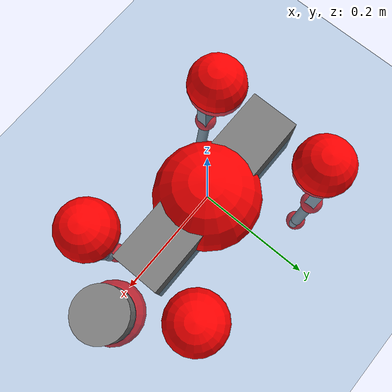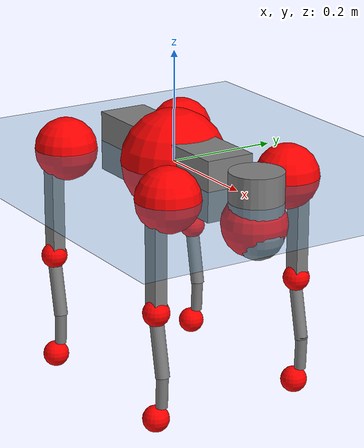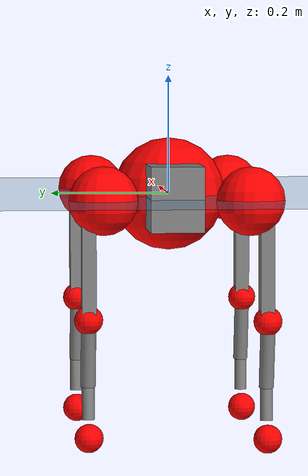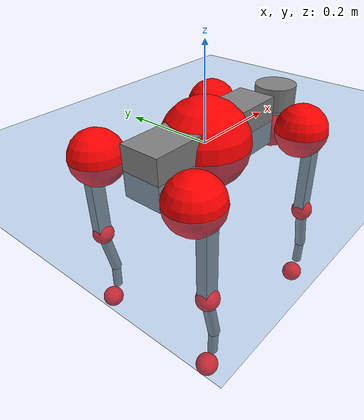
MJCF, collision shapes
<mujoco model="go2">
  <compiler angle="radian" assetdir="assets" balanceinertia="true" inertiafromgeom="false"/>

  <option timestep="0.005" density="1.2" viscosity="2e-05"/>

  <size nkey="1"/>

  <visual>
    <quality shadowsize="8192"/>
    <map shadowclip="0.5"/>
  </visual>

  <default>
    <default class="/">
      <geom contype="0" conaffinity="0" group="1" solref="-1000 -80"/>
      <site size="0.01 0.005 0.005" group="5"/>
      <general forcelimited="true" biastype="affine" gainprm="20" biasprm="0 -20 -0.5"/>
      <default class="go2">
        <joint armature="0.01" damping="0.01" frictionloss="0.2"/>
        <geom condim="1" margin="0.001"/>
        <default class="visual">
          <geom type="mesh" group="2"/>
        </default>
        <default class="collision">
          <geom group="3"/>
          <default class="foot">
            <geom size="0.022 0 0" condim="6" priority="1" friction="0.8 0.02 0.01" solimp="0.015 1 0.022"/>
          </default>
        </default>
        <default class="reward_collision_sphere">
          <geom group="5" rgba="1 0 0 1"/>
        </default>
      </default>
    </default>
  </default>

  <asset>
    <texture type="skybox" colorspace="auto" name="//unnamed_texture_0" builtin="gradient" rgb1="0.95 0.95 0.95" rgb2="0.95 0.95 0.95" width="100" height="600"/>
    <texture type="2d" colorspace="auto" name="texplane" builtin="checker" rgb1="0.345 0.575 0.748" rgb2="0.345 0.575 0.748" markrgb="1 1 1" width="512" height="512"/>
    <material name="MatPlane" class="/" texture="texplane" texuniform="true" texrepeat="2 2" specular="0.9"/>
    <material name="metal" class="/" rgba="0.9 0.95 0.95 1"/>
    <material name="black" class="/" rgba="0 0 0 1"/>
    <material name="white" class="/"/>
    <material name="gray" class="/" rgba="0.671705 0.692426 0.77427 1"/>
    <mesh name="base_0" class="/" file="base_0.obj"/>
    <mesh name="base_1" class="/" file="base_1.obj"/>
    <mesh name="base_2" class="/" file="base_2.obj"/>
    <mesh name="base_3" class="/" file="base_3.obj"/>
    <mesh name="base_4" class="/" file="base_4.obj"/>
    <mesh name="hip_0" class="/" file="hip_0.obj"/>
    <mesh name="hip_1" class="/" file="hip_1.obj"/>
    <mesh name="thigh_0" class="/" file="thigh_0.obj"/>
    <mesh name="thigh_1" class="/" file="thigh_1.obj"/>
    <mesh name="thigh_mirror_0" class="/" file="thigh_mirror_0.obj"/>
    <mesh name="thigh_mirror_1" class="/" file="thigh_mirror_1.obj"/>
    <mesh name="calf_0" class="/" file="calf_0.obj"/>
    <mesh name="calf_1" class="/" file="calf_1.obj"/>
    <mesh name="calf_mirror_0" class="/" file="calf_mirror_0.obj"/>
    <mesh name="calf_mirror_1" class="/" file="calf_mirror_1.obj"/>
    <mesh name="foot" class="/" file="foot.obj"/>
  </asset>

  <worldbody>
    <geom name="floor" class="/" size="100 100 0.125" type="plane" group="0" material="MatPlane"/>
    <light name="toplight_shadow" class="/" pos="0 0 5" dir="0.0990148 0.0990148 -0.990148" type="directional" ambient="0.04 0.04 0.04" diffuse="0.55 0.55 0.55" specular="0.12 0.12 0.12"/>
    <light name="toplight_fill" class="/" pos="0 0 5" dir="0.0990148 0.0990148 -0.990148" type="directional" castshadow="false" ambient="0.04 0.04 0.04" diffuse="0.3 0.3 0.3" specular="0.08 0.08 0.08"/>
    <body name="trunk" childclass="go2" pos="0.000117082 -1.47333e-05 -0.000851711" quat="1 4.04932e-05 -4.57437e-06 2.55189e-05">
      <inertial pos="0.0194806 0.00212854 -0.00359411" quat="-0.000438659 0.713141 -0.00167976 0.701019" mass="6.00624" diaginertia="0.0667399 0.118959 0.0161439"/>
      <joint name="//unnamed_joint_0" type="free" armature="0" damping="0" frictionloss="0"/>
      <geom name="//unnamed_geom_1" class="visual" material="black" mesh="base_0"/>
      <geom name="//unnamed_geom_2" class="visual" material="black" mesh="base_1"/>
      <geom name="//unnamed_geom_3" class="visual" material="black" mesh="base_2"/>
      <geom name="//unnamed_geom_4" class="visual" material="white" mesh="base_3"/>
      <geom name="//unnamed_geom_5" class="visual" material="gray" mesh="base_4"/>
      <geom name="trunk_1" class="collision" size="0.179383 0.0445835 0.0543585" type="box"/>
      <geom name="trunk_2" class="collision" size="0.0476829 0.0429146" pos="0.257779 0 0.00919797" type="cylinder"/>
      <geom name="trunk_3" class="collision" size="0.0448219" pos="0.265015 0 -0.0551878"/>
      <geom name="//unnamed_geom_9" class="reward_collision_sphere" size="0.0953657"/>
      <geom name="//unnamed_geom_10" class="reward_collision_sphere" size="0.0572194" pos="0.253257 0 -0.0413909"/>
      <site name="imu" pos="-0.0283326 0.00109413 0.0339141" size="0.00953657"/>
      <camera name="track" pos="0 -2.07337 0" quat="0.707107 0.707107 0 0" mode="trackcom"/>
      <camera name="ego_camera" pos="0.2822 0 0.0413909" quat="-0.5 -0.5 0.5 0.5"/>
      <body name="FL_hip" pos="0.1738 0.0484504 0.000107095" quat="1 7.78173e-05 -0.000230755 -8.77543e-05">
        <inertial pos="-0.00658344 0.00189925 0.000148776" quat="0.497239 0.499431 0.5053 0.49799" mass="0.602014" diaginertia="0.00054192 0.000725508 0.000319583"/>
        <joint name="FL_hip_joint" pos="0 0 0" axis="0.999994 -0.00346115 0.000238873" stiffness="0.00277732" range="-1.03133 1.04588" armature="0.00960803" damping="0.00425868" frictionloss="0.175021"/>
        <geom name="//unnamed_geom_11" class="visual" material="metal" mesh="hip_0"/>
        <geom name="//unnamed_geom_12" class="visual" material="gray" mesh="hip_1"/>
        <geom name="//unnamed_geom_13" class="collision" size="0.0438682 0.0190731" pos="0 0.082935 0" quat="0.707107 0.707107 0 0" type="cylinder"/>
        <geom name="//unnamed_geom_14" class="reward_collision_sphere" size="0.0572194" pos="0 0.0725681 0"/>
        <body name="FL_thigh" pos="-0.00144601 0.0983614 0.00197026" quat="1 1.71491e-05 -0.000134291 3.79896e-05">
          <inertial pos="-0.00372339 -0.0229642 -0.02964" quat="0.829892 0.0834786 -0.0205958 0.551259" mass="0.964017" diaginertia="0.00361065 0.00693282 0.000546711"/>
          <joint name="FL_thigh_joint" pos="0 0 0" axis="0.00375296 0.999991 0.00197025" stiffness="0.00624041" range="-1.57575 3.47723" armature="0.00926488" damping="0.00590288" frictionloss="0.195489"/>
          <geom name="//unnamed_geom_15" class="visual" material="metal" mesh="thigh_0"/>
          <geom name="//unnamed_geom_16" class="visual" material="gray" mesh="thigh_1"/>
          <geom name="//unnamed_geom_17" class="collision" size="0.101565 0.0116823 0.0162122" pos="0 0 -0.0979584" quat="0.707107 0 0.707107 0" type="box"/>
          <body name="FL_calf" pos="-0.000965378 -9.34787e-05 -0.194726" quat="0.999999 0.000919645 -0.000563964 0.000422698">
            <inertial pos="0.00512251 -0.000522128 -0.129534" quat="0.710823 0.00171314 -0.0040588 0.703358" mass="0.20913" diaginertia="0.000903363 0.00171442 3.47443e-05"/>
            <joint name="FL_calf_joint" pos="0 0 0" axis="-0.00176482 0.999971 -0.00742078" stiffness="0.00105361" range="-2.71625 -0.83412" armature="0.00988275" damping="0.00797245" frictionloss="0.182582"/>
            <geom name="//unnamed_geom_18" class="visual" material="gray" mesh="calf_0"/>
            <geom name="//unnamed_geom_19" class="visual" material="black" mesh="calf_1"/>
            <geom name="FL_calf0" class="collision" size="0.0114439 0.0572194" pos="0.0072359 0 -0.0551878" quat="0.994493 0 -0.104807 0" type="cylinder"/>
            <geom name="//unnamed_geom_21" class="collision" size="0.0104902 0.0309939" pos="0.0180898 0 -0.13613" quat="0.999688 0 0.0249974 0" type="cylinder"/>
            <geom name="//unnamed_geom_22" class="visual" pos="0 0 -0.195917" quat="1 0 0 0" material="black" mesh="foot"/>
            <geom name="FL_foot" class="foot" size="0.0186732" pos="-0.00180898 0 -0.195917"/>
            <geom name="//unnamed_geom_24" class="reward_collision_sphere" size="0.0238414"/>
            <geom name="//unnamed_geom_25" class="reward_collision_sphere" size="0.0238414" pos="-0.00180898 0 -0.195917"/>
            <site name="FL_foot" class="foot" pos="-0.00180898 0 -0.195917" size="0.00953657"/>
          </body>
        </body>
      </body>
      <body name="FR_hip" pos="0.174513 -0.0475634 -0.000450192" quat="1 2.10976e-05 -0.000443771 0.000514353">
        <inertial pos="-0.00479792 -0.00147642 4.98419e-05" quat="0.497527 0.505311 0.499788 0.497333" mass="0.565721" diaginertia="0.000517962 0.000700017 0.000315934"/>
        <joint name="FR_hip_joint" pos="0 0 0" axis="0.999991 0.00320307 -0.00284424" stiffness="1.14322e-05" range="-1.02307 1.00494" armature="0.00964461" damping="0.0103226" frictionloss="0.187515"/>
        <geom name="//unnamed_geom_26" class="visual" pos="0 1.0183e-09 4.36769e-08" quat="4.63268e-05 1 0 0" material="metal" mesh="hip_0"/>
        <geom name="//unnamed_geom_27" class="visual" pos="0 1.65078e-09 -1.0803e-07" quat="4.63268e-05 1 0 0" material="gray" mesh="hip_1"/>
        <geom name="//unnamed_geom_28" class="collision" size="0.0438682 0.0190731" pos="0 -0.082935 0" quat="0.707107 0.707107 0 0" type="cylinder"/>
        <geom name="//unnamed_geom_29" class="reward_collision_sphere" size="0.0572194" pos="0 -0.0725681 0"/>
        <body name="FR_thigh" pos="0.00287924 -0.098096 0.000779607" quat="1 -5.07193e-05 0.000494238 0.000185549">
          <inertial pos="-0.00270619 0.0231337 -0.0300124" quat="0.551603 -0.0197426 0.0845848 0.829572" mass="1.03721" diaginertia="0.00361291 0.00728847 0.000593672"/>
          <joint name="FR_thigh_joint" pos="0 0 0" axis="0.00918389 -0.999955 0.00222202" range="-3.44032 1.52464" armature="0.00944625" damping="0.00160293" frictionloss="0.197533"/>
          <geom name="//unnamed_geom_30" class="visual" material="metal" mesh="thigh_mirror_0"/>
          <geom name="//unnamed_geom_31" class="visual" material="gray" mesh="thigh_mirror_1"/>
          <geom name="//unnamed_geom_32" class="collision" size="0.101565 0.0116823 0.0162122" pos="0 0 -0.0979584" quat="0.707107 0 0.707107 0" type="box"/>
          <body name="FR_calf" pos="0.00207206 -0.00109809 -0.195749" quat="1 -0.000168955 0.000157611 8.86208e-05">
            <inertial pos="0.00656942 0.00147534 -0.127964" quat="0.704028 -0.00377822 -0.00330982 0.710154" mass="0.202653" diaginertia="0.000902494 0.0017532 3.50153e-05"/>
            <joint name="FR_calf_joint" pos="0 0 0" axis="-0.0100059 -0.999945 -0.00312409" stiffness="0.00235075" range="0.81857 2.68843" armature="0.00958621" damping="0.0173248" frictionloss="0.166669"/>
            <geom name="//unnamed_geom_33" class="visual" material="gray" mesh="calf_mirror_0"/>
            <geom name="//unnamed_geom_34" class="visual" material="black" mesh="calf_mirror_1"/>
            <geom name="FR_calf0" class="collision" size="0.0123975 0.0572194" pos="0.00904488 0 -0.0551878" quat="0.995004 0 -0.0998334 0" type="cylinder"/>
            <geom name="//unnamed_geom_36" class="collision" size="0.0104902 0.0309939" pos="0.0180898 0 -0.13613" quat="0.999688 0 0.0249974 0" type="cylinder"/>
            <geom name="//unnamed_geom_37" class="visual" pos="0 0 -0.195917" quat="1 0 0 0" material="black" mesh="foot"/>
            <geom name="FR_foot" class="foot" size="0.0224263" pos="-0.00180898 0 -0.195917"/>
            <geom name="//unnamed_geom_39" class="reward_collision_sphere" size="0.0238414"/>
            <geom name="//unnamed_geom_40" class="reward_collision_sphere" size="0.0238414" pos="-0.00180898 0 -0.195917"/>
            <site name="FR_foot" class="foot" pos="-0.00180898 0 -0.195917" size="0.00953657"/>
          </body>
        </body>
      </body>
      <body name="RL_hip" pos="-0.174077 0.0499653 -0.00102878" quat="1 -0.000158912 -0.000122464 -0.000231134">
        <inertial pos="0.00533927 0.000689673 -0.000455613" quat="0.514598 0.489303 0.495939 0.499815" mass="0.569752" diaginertia="0.000528619 0.000718369 0.000319317"/>
        <joint name="RL_hip_joint" pos="0 0 0" axis="-0.999829 -0.0127695 -0.0133743" range="-1.06074 1.05547" armature="0.00958274" damping="0.00915102" frictionloss="0.186778"/>
        <geom name="//unnamed_geom_41" class="visual" pos="1.33369e-10 0 2.61434e-08" quat="4.63268e-05 0 1 0" material="metal" mesh="hip_0"/>
        <geom name="//unnamed_geom_42" class="visual" pos="2.16207e-10 0 2.31855e-08" quat="4.63268e-05 0 1 0" material="gray" mesh="hip_1"/>
        <geom name="//unnamed_geom_43" class="collision" size="0.0438682 0.0190731" pos="0 0.082935 0" quat="0.707107 0.707107 0 0" type="cylinder"/>
        <geom name="//unnamed_geom_44" class="reward_collision_sphere" size="0.0572194" pos="0 0.0725681 0"/>
        <body name="RL_thigh" pos="-0.000241052 0.0972353 -0.000843857" quat="1 -6.3906e-05 -4.41305e-05 8.93675e-05">
          <inertial pos="-0.0023126 -0.0236471 -0.0302047" quat="0.828749 0.0805693 -0.0187007 0.553474" mass="1.00766" diaginertia="0.00371407 0.0072059 0.000590552"/>
          <joint name="RL_thigh_joint" pos="0 0 0" axis="-0.00755378 0.99994 0.00787437" stiffness="0.000294134" range="-0.518731 4.54394" armature="0.00949448" damping="0.00853241" frictionloss="0.189761"/>
          <geom name="//unnamed_geom_45" class="visual" material="metal" mesh="thigh_0"/>
          <geom name="//unnamed_geom_46" class="visual" material="gray" mesh="thigh_1"/>
          <geom name="//unnamed_geom_47" class="collision" size="0.101565 0.0116823 0.0162122" pos="0 0 -0.0979584" quat="0.707107 0 0.707107 0" type="box"/>
          <body name="RL_calf" pos="0.001771 0.000245897 -0.195778" quat="1 -0.000651424 0.000358432 -0.000457693">
            <inertial pos="0.00696176 0.000490058 -0.130744" quat="0.710714 0.0017804 -0.00458201 0.703464" mass="0.210722" diaginertia="0.000943022 0.00185685 3.72654e-05"/>
            <joint name="RL_calf_joint" pos="0 0 0" axis="0.0151878 0.999883 0.00194057" range="-2.72006 -0.887832" armature="0.00939852" damping="0.00202316" frictionloss="0.185511"/>
            <geom name="//unnamed_geom_48" class="visual" material="gray" mesh="calf_0"/>
            <geom name="//unnamed_geom_49" class="visual" material="black" mesh="calf_1"/>
            <geom name="RL_calf0" class="collision" size="0.0123975 0.0572194" pos="0.00904488 0 -0.0551878" quat="0.995004 0 -0.0998334 0" type="cylinder"/>
            <geom name="//unnamed_geom_51" class="collision" size="0.0104902 0.0309939" pos="0.0180898 0 -0.13613" quat="0.999688 0 0.0249974 0" type="cylinder"/>
            <geom name="//unnamed_geom_52" class="visual" pos="0 0 -0.195917" quat="1 0 0 0" material="black" mesh="foot"/>
            <geom name="RL_foot" class="foot" size="0.0165477" pos="-0.00180898 0 -0.195917"/>
            <geom name="//unnamed_geom_54" class="reward_collision_sphere" size="0.0238414"/>
            <geom name="//unnamed_geom_55" class="reward_collision_sphere" size="0.0238414" pos="-0.00180898 0 -0.195917"/>
            <site name="RL_foot" class="foot" pos="-0.00180898 0 -0.195917" size="0.00953657"/>
          </body>
        </body>
      </body>
      <body name="RR_hip" pos="-0.174669 -0.0484295 -0.00255552" quat="1 -0.000301844 -0.000746473 0.000556928">
        <inertial pos="0.00418386 -0.00253154 0.000803378" quat="0.491501 0.500914 0.493792 0.513499" mass="0.591405" diaginertia="0.000533692 0.000714212 0.000314569"/>
        <joint name="RR_hip_joint" pos="0 0 0" axis="-0.999985 0.00121812 -0.00540246" stiffness="0.00118043" range="-1.0823 1.03438" armature="0.00854442" damping="0.0116656" frictionloss="0.193057"/>
        <geom name="//unnamed_geom_56" class="visual" pos="-1.28792e-10 1.0183e-09 -1.75336e-08" quat="2.14617e-09 4.63268e-05 4.63268e-05 -1" material="metal" mesh="hip_0"/>
        <geom name="//unnamed_geom_57" class="visual" pos="-2.27527e-10 1.65078e-09 1.31215e-07" quat="2.14617e-09 4.63268e-05 4.63268e-05 -1" material="gray" mesh="hip_1"/>
        <geom name="//unnamed_geom_58" class="collision" size="0.0438682 0.0190731" pos="0 -0.082935 0" quat="0.707107 0.707107 0 0" type="cylinder"/>
        <geom name="//unnamed_geom_59" class="reward_collision_sphere" size="0.0572194" pos="0 -0.0725681 0"/>
        <body name="RR_thigh" pos="-0.000198171 -0.0991411 -0.00327174" quat="1 0.000166018 -4.09452e-05 0.0001902">
          <inertial pos="-0.00317041 0.0257632 -0.0302703" quat="0.550091 -0.0251594 0.0807234 0.830813" mass="0.964779" diaginertia="0.00346625 0.00678243 0.000556566"/>
          <joint name="RR_thigh_joint" pos="0 0 0" axis="-0.00263546 -0.999989 -0.00380243" stiffness="0.00242883" range="-4.55686 0.479736" armature="0.010863" damping="0.0137267" frictionloss="0.180879"/>
          <geom name="//unnamed_geom_60" class="visual" material="metal" mesh="thigh_mirror_0"/>
          <geom name="//unnamed_geom_61" class="visual" material="gray" mesh="thigh_mirror_1"/>
          <geom name="//unnamed_geom_62" class="collision" size="0.101565 0.0116823 0.0162122" pos="0 0 -0.0979584" quat="0.707107 0 0.707107 0" type="box"/>
          <body name="RR_calf" pos="-0.000705213 -0.0020474 -0.196163" quat="1 -0.000121005 0.000114082 0.000619104">
            <inertial pos="0.00490752 0.000791559 -0.129789" quat="0.703477 0.00477026 -0.0060023 0.710676" mass="0.20505" diaginertia="0.000903358 0.00178556 3.6318e-05"/>
            <joint name="RR_calf_joint" pos="0 0 0" axis="-0.00453273 -0.999985 0.0031052" stiffness="0.00864598" range="0.86753 2.76567" armature="0.00937519" damping="0.01319" frictionloss="0.191425"/>
            <geom name="//unnamed_geom_63" class="visual" material="gray" mesh="calf_mirror_0"/>
            <geom name="//unnamed_geom_64" class="visual" material="black" mesh="calf_mirror_1"/>
            <geom name="RR_calf0" class="collision" size="0.0123975 0.0572194" pos="0.00904488 0 -0.0551878" quat="0.995004 0 -0.0998334 0" type="cylinder"/>
            <geom name="//unnamed_geom_66" class="collision" size="0.0104902 0.0309939" pos="0.0180898 0 -0.13613" quat="0.999688 0 0.0249974 0" type="cylinder"/>
            <geom name="//unnamed_geom_67" class="visual" pos="0 0 -0.195917" quat="1 0 0 0" material="black" mesh="foot"/>
            <geom name="RR_foot" class="foot" size="0.020767" pos="-0.00180898 0 -0.195917"/>
            <geom name="//unnamed_geom_69" class="reward_collision_sphere" size="0.0238414"/>
            <geom name="//unnamed_geom_70" class="reward_collision_sphere" size="0.0238414" pos="-0.00180898 0 -0.195917"/>
            <site name="RR_foot" class="foot" pos="-0.00180898 0 -0.195917" size="0.00953657"/>
          </body>
        </body>
      </body>
    </body>
  </worldbody>

  <contact>
    <pair class="/" geom1="floor" geom2="FL_foot" name="//unnamed_contact_0"/>
    <pair class="/" geom1="floor" geom2="FR_foot" name="//unnamed_contact_1"/>
    <pair class="/" geom1="floor" geom2="RL_foot" name="//unnamed_contact_2"/>
    <pair class="/" geom1="floor" geom2="RR_foot" name="//unnamed_contact_3"/>
  </contact>

  <actuator>
    <general name="FL_hip" class="/" joint="FL_hip_joint" forcerange="-22.6503 22.6503" gainprm="20.2683" biasprm="0 -20.2683 -0.466046"/>
    <general name="FL_thigh" class="/" joint="FL_thigh_joint" forcerange="-20.5211 20.5211" gainprm="20.2683" biasprm="0 -20.2683 -0.466046"/>
    <general name="FL_calf" class="/" joint="FL_calf_joint" forcerange="-41.6657 41.6657" gainprm="20.2683" biasprm="0 -20.2683 -0.466046"/>
    <general name="FR_hip" class="/" joint="FR_hip_joint" forcerange="-23.3524 23.3524" gainprm="20.2683" biasprm="0 -20.2683 -0.466046"/>
    <general name="FR_thigh" class="/" joint="FR_thigh_joint" forcerange="-21.6461 21.6461" gainprm="20.2683" biasprm="0 -20.2683 -0.466046"/>
    <general name="FR_calf" class="/" joint="FR_calf_joint" forcerange="-44.3165 44.3165" gainprm="20.2683" biasprm="0 -20.2683 -0.466046"/>
    <general name="RL_hip" class="/" joint="RL_hip_joint" forcerange="-23.0716 23.0716" gainprm="20.2683" biasprm="0 -20.2683 -0.466046"/>
    <general name="RL_thigh" class="/" joint="RL_thigh_joint" forcerange="-22.633 22.633" gainprm="20.2683" biasprm="0 -20.2683 -0.466046"/>
    <general name="RL_calf" class="/" joint="RL_calf_joint" forcerange="-43.943 43.943" gainprm="20.2683" biasprm="0 -20.2683 -0.466046"/>
    <general name="RR_hip" class="/" joint="RR_hip_joint" forcerange="-20.5027 20.5027" gainprm="20.2683" biasprm="0 -20.2683 -0.466046"/>
    <general name="RR_thigh" class="/" joint="RR_thigh_joint" forcerange="-22.7877 22.7877" gainprm="20.2683" biasprm="0 -20.2683 -0.466046"/>
    <general name="RR_calf" class="/" joint="RR_calf_joint" forcerange="-43.7056 43.7056" gainprm="20.2683" biasprm="0 -20.2683 -0.466046"/>
  </actuator>

  <sensor>
    <gyro site="imu" name="imu_angular_velocity"/>
    <velocimeter site="imu" name="imu_linear_velocity"/>
    <framelinvel objtype="site" objname="FL_foot" name="FL_foot_global_linear_velocity"/>
    <framelinvel objtype="site" objname="FR_foot" name="FR_foot_global_linear_velocity"/>
    <framelinvel objtype="site" objname="RL_foot" name="RL_foot_global_linear_velocity"/>
    <framelinvel objtype="site" objname="RR_foot" name="RR_foot_global_linear_velocity"/>
  </sensor>

  <keyframe>
    <key name="home" qpos="0 0 0.325 1 0 0 0 0.1 0.8 -1.5 -0.1 -0.8 1.5 -0.1 0.8 -1.5 0.1 -0.8 1.5"/>
  </keyframe>
</mujoco>
